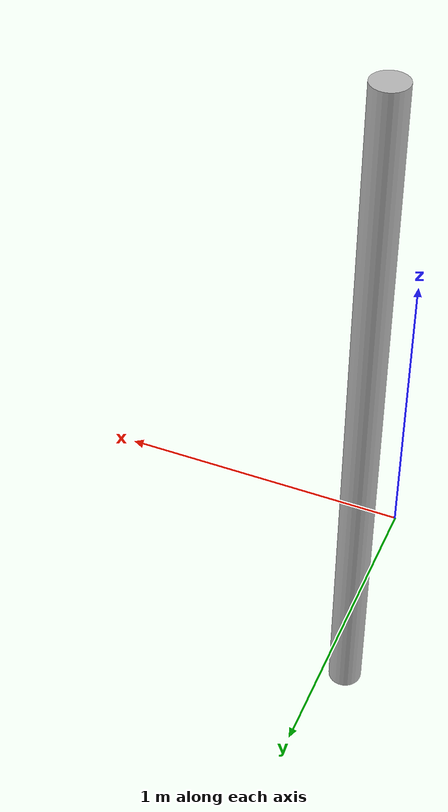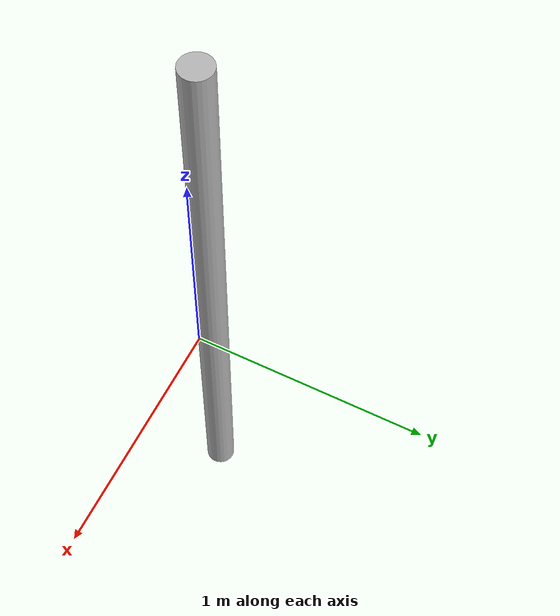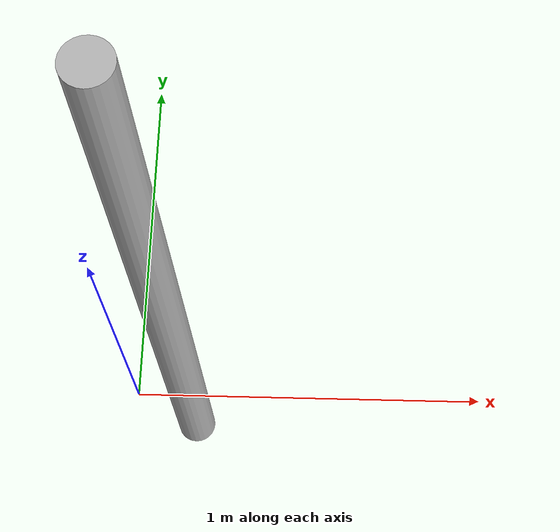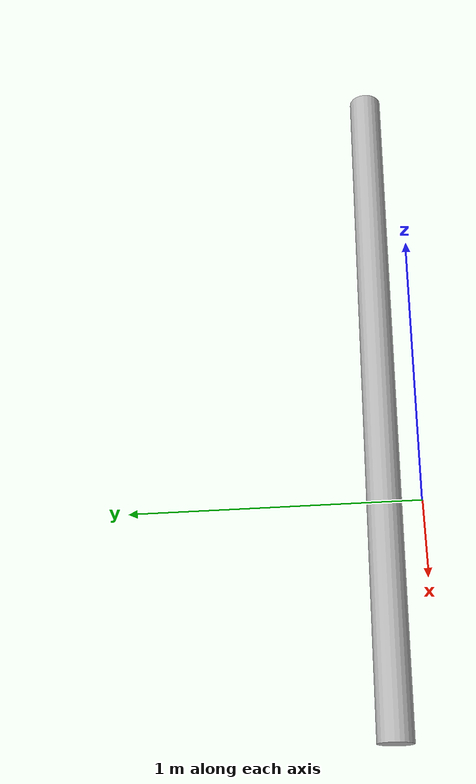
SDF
<?xml version='1.0'?>
<sdf version="1.4">
  <model name="my_model">
    <pose>0 0 0.4 0 0 0</pose>
    <static>true</static>
      <link name="pole">
        <pose>0.1 0.13 0.1 0 0 0</pose>

        <collision name="collision">
          <geometry>
            <cylinder>
              <radius>0.060</radius>
              <length>2.5</length>
            </cylinder>
          </geometry>
        </collision>

        <surface>
            <friction>
              <ode>
                <mu>1</mu>
                <mu2>1</mu2>
              </ode>
            </friction>
          </surface>

        <visual name="visual">
          <geometry>
            <cylinder>
              <radius>0.060</radius>
              <length>2.5</length>
            </cylinder>
          </geometry>
        </visual>
      </link>
  </model>
</sdf>
